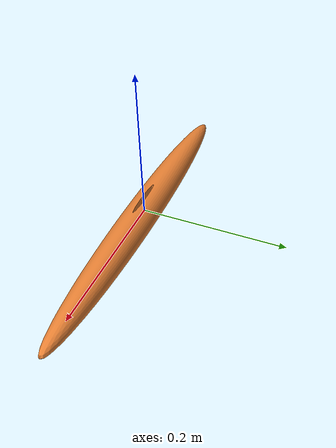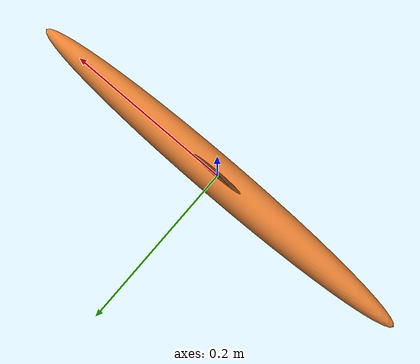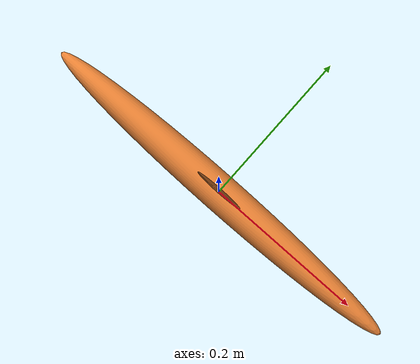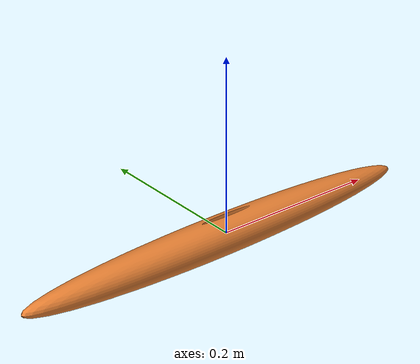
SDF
<?xml version="1.0" ?>
<sdf version="1.6"><world name="world"><model name="toy_float_spheroid">
  <pose>0 0 0 0 0 0</pose>
  <link name="base_link"><pose>0 0 0 0 0 0</pose>
    <inertial><pose>0 0 0 0 0 0</pose><mass>0.26</mass>
      <inertia><ixx>2.6000e-04</ixx><ixy>0</ixy><ixz>0</ixz>
               <iyy>2.6000e-04</iyy><iyz>0</iyz><izz>2.6000e-04</izz></inertia></inertial>
    <collision name="c"><pose>0 0 0 0 0 0</pose>
      <geometry><mesh><uri>_float_spheroid.obj</uri><scale>1 1 1</scale></mesh></geometry></collision>
    <visual name="v"><pose>0 0 0 0 0 0</pose>
      <geometry><mesh><uri>_float_spheroid.obj</uri><scale>1 1 1</scale></mesh></geometry>
      <material><ambient>0.9 0.5 0.2 1</ambient><diffuse>0.9 0.5 0.2 1</diffuse></material></visual>
  </link></model></world></sdf>
